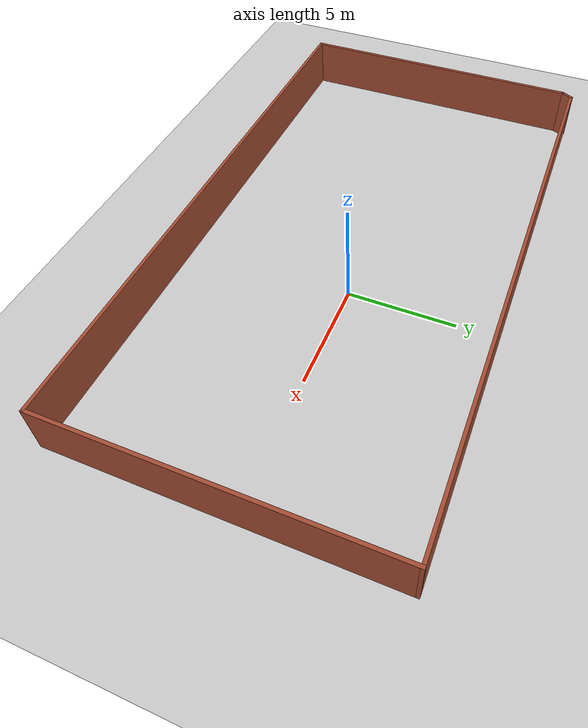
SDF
<sdf version="1.6">
 <world name="default">
  <light name="sun" type="directional">
   <pose>0 0 10 0 -0 0</pose>
   <diffuse>0.8 0.8 0.8 1</diffuse>
   <specular>0.2 0.2 0.2 1</specular>
   <attenuation>
    <range>1000</range>
    <constant>0.9</constant>
    <linear>0.01</linear>
    <quadratic>0.001</quadratic>
   </attenuation>
   <direction>-0.5 0.1 -0.9</direction>
  </light>
  <model name="ground_plane">
   <static>1</static>
   <link name="link">
    <collision name="collision">
     <geometry><plane><normal>0 0 1</normal><size>100 100</size></plane></geometry>
     <surface>
      <contact><collide_bitmask>65535</collide_bitmask></contact>
      <friction><ode><mu>100</mu><mu2>50</mu2></ode></friction>
     </surface>
    </collision>
    <visual name="visual">
     <cast_shadows>0</cast_shadows>
     <geometry><plane><normal>0 0 1</normal><size>100 100</size></plane></geometry>
     <material>
      <script><uri>file://media/materials/scripts/gazebo.material</uri><name>Gazebo/Grey</name></script>
     </material>
    </visual>
   </link>
  </model>
  <gravity>0 0 -9.8</gravity>
  <magnetic_field>6e-06 2.3e-05 -4.2e-05</magnetic_field>
  <atmosphere type="adiabatic"/>
  <physics name="default_physics" default="0" type="ode">
   <max_step_size>0.001</max_step_size>
   <real_time_factor>1</real_time_factor>
   <real_time_update_rate>1000</real_time_update_rate>
  </physics>
  <scene><ambient>0.4 0.4 0.4 1</ambient><background>0.7 0.7 0.7 1</background><shadows>1</shadows></scene>
  <audio><device>default</device></audio>
  <spherical_coordinates>
   <surface_model>EARTH_WGS84</surface_model>
   <latitude_deg>0</latitude_deg>
   <longitude_deg>0</longitude_deg>
   <elevation>0</elevation>
   <heading_deg>0</heading_deg>
  </spherical_coordinates>
  <model name="bugworld">
   <pose>-2.27675 -0.538425 0 0 -0 0</pose>
   <link name="Wall_10">
    <collision name="Wall_10_Collision">
     <geometry><box><size>0.709017 0.15 2.5</size></box></geometry>
     <pose>0 0 1.25 0 -0 0</pose>
    </collision>
    <visual name="Wall_10_Visual">
     <pose>0 0 1.25 0 -0 0</pose>
     <geometry><box><size>0.709017 0.15 2.5</size></box></geometry>
     <material>
      <script><uri>file://media/materials/scripts/gazebo.material</uri><name>Gazebo/Bricks</name></script>
      <ambient>1 1 1 1</ambient>
     </material>
     <meta><layer>0</layer></meta>
    </visual>
    <pose>-13.2872 7.16219 0 0 -0 -2.03444</pose>
   </link>
   <link name="Wall_6">
    <collision name="Wall_6_Collision">
     <geometry><box><size>14.5 0.15 2.5</size></box></geometry>
     <pose>0 0 1.25 0 -0 0</pose>
    </collision>
    <visual name="Wall_6_Visual">
     <pose>0 0 1.25 0 -0 0</pose>
     <geometry><box><size>14.5 0.15 2.5</size></box></geometry>
     <material>
      <script><uri>file://media/materials/scripts/gazebo.material</uri><name>Gazebo/Bricks</name></script>
      <ambient>1 1 1 1</ambient>
     </material>
     <meta><layer>0</layer></meta>
    </visual>
    <pose>-13.4122 -0.262811 0 0 -0 -1.5708</pose>
   </link>
   <link name="Wall_7">
    <collision name="Wall_7_Collision">
     <geometry><box><size>27 0.15 2.5</size></box></geometry>
     <pose>0 0 1.25 0 -0 0</pose>
    </collision>
    <visual name="Wall_7_Visual">
     <pose>0 0 1.25 0 -0 0</pose>
     <geometry><box><size>27 0.15 2.5</size></box></geometry>
     <material>
      <script><uri>file://media/materials/scripts/gazebo.material</uri><name>Gazebo/Bricks</name></script>
      <ambient>1 1 1 1</ambient>
     </material>
     <meta><layer>0</layer></meta>
    </visual>
    <pose>0.012811 -7.43781 0 0 -0 0</pose>
   </link>
   <link name="Wall_8">
    <collision name="Wall_8_Collision">
     <geometry><box><size>15 0.15 2.5</size></box></geometry>
     <pose>0 0 1.25 0 -0 0</pose>
    </collision>
    <visual name="Wall_8_Visual">
     <pose>0 0 1.25 0 -0 0</pose>
     <geometry><box><size>15 0.15 2.5</size></box></geometry>
     <material>
      <script><uri>file://media/materials/scripts/gazebo.material</uri><name>Gazebo/Bricks</name></script>
      <ambient>1 1 1 1</ambient>
     </material>
     <meta><layer>0</layer></meta>
    </visual>
    <pose>13.4378 -0.012811 0 0 -0 1.5708</pose>
   </link>
   <link name="Wall_9">
    <collision name="Wall_9_Collision">
     <geometry><box><size>26.75 0.15 2.5</size></box></geometry>
     <pose>0 0 1.25 0 -0 0</pose>
    </collision>
    <visual name="Wall_9_Visual">
     <pose>0 0 1.25 0 -0 0</pose>
     <geometry><box><size>26.75 0.15 2.5</size></box></geometry>
     <material>
      <script><uri>file://media/materials/scripts/gazebo.material</uri><name>Gazebo/Bricks</name></script>
      <ambient>1 1 1 1</ambient>
     </material>
     <meta><layer>0</layer></meta>
    </visual>
    <pose>0.137811 7.41219 0 0 -0 3.14159</pose>
   </link>
   <static>1</static>
  </model>
 </world>
</sdf>
